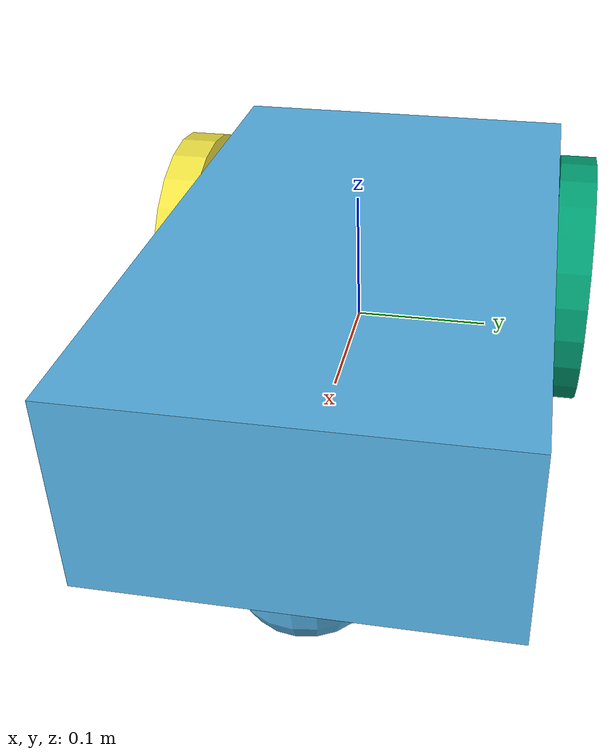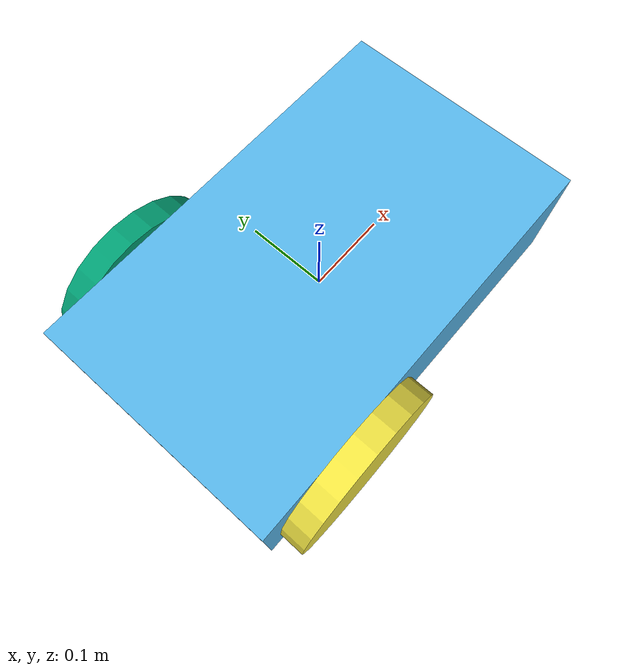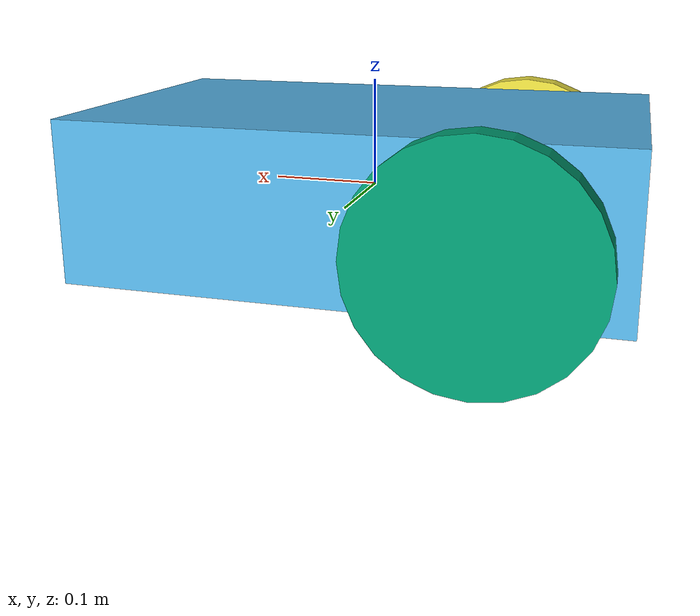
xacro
<?xml version="1.0"?>

<!-- choose a name space and start xacro -->
<robot xmlns:xacro="http://wwww.ros.org/wiki/xacro">

 <!-- Start by including all the required xacrro files which hold the macros -->
 <xacro:include filename="$(find simulation_environment)/models/diff_drive/diff_drive.gazebo" />
 <xacro:include filename="$(find simulation_environment)/models/diff_drive/materials.xacro" />
 <xacro:include filename="$(find simulation_environment)/models/diff_drive/macros.xacro" />
 <xacro:include filename="$(find simulation_environment)/models/diff_drive/parameter.xacro" />

 <!-- Create a dummy link as a base link -->
  <link name='base_link'>
    <pose>0 0 0 0 0 0</pose>
  </link>
  <joint type="fixed" name="base_link_to_chassis">
    <child link="chassis_link"/>
    <parent link="base_link"/>
  </joint>

 <!-- Define the chassis of  the differential drive robot, which is our base -->
 <link name='chassis_link'>
    <pose>0 0 0 0 0 0</pose>
    <!-- Define inertial system for the chassis -->
    <inertial>
      <mass value="${m_chassis}"/>
      <xacro:box_inertia m="${m_chassis}" x="${x_chassis}" y="${y_chassis}" z="${z_chassis}"/>
    </inertial>
    <!-- Define collision surrounding box -->
    <collision name='collision'>>
      <origin xyz="0 0 0" rpy="0 0 0"/>
      <geometry>
       <box size="${x_chassis} ${y_chassis} ${z_chassis}"/>
      </geometry>
    </collision>
    <!-- Define visualization structure -->
    <visual name='base_link_visual'>
	    <origin xyz="0 0 0" rpy="0 0 0"/>
	    <geometry>
         <box size="${x_chassis} ${y_chassis} ${z_chassis}"/>
      </geometry>
    </visual>

    <!-- Add the castor wheel! Here we simply assume complete slippage, thus we do not require that it rotates! -->
    <collision name='caster_collision'>
      <origin xyz="${-(r_wheel/2)+x_chassis/2} 0 ${-z_chassis/2}" rpy="0 0 0"/>
      <geometry>
       <sphere radius="${r_wheel/2}"/>
      </geometry>
      <surface>
       <friction>
        <ode>
         <mu>0</mu>
         <mu2>0</mu2>
         <slip1>1.0</slip1>
         <slip2>1.0</slip2>
        </ode>
       </friction>
      </surface>
    </collision>
    <visual name='caster_visual'>
	    <origin xyz="${-(r_wheel/2)+x_chassis/2} 0 ${-z_chassis/2}" rpy="0 0 0"/>
    	<geometry>
        <sphere radius="${r_wheel/2}"/>
      </geometry>
    </visual>
  </link>

  <!-- Add the wheels for the robot -->
  <link name="left_wheel">
    <collision name="collision">
      <origin xyz="0 0 0" rpy="0 1.5707 1.5707"/>
      <geometry>
       <cylinder radius="${r_wheel}" length="${h_wheel}"/>
      </geometry>
      <surface>
       <friction>
        <ode>
         <mu>1.0</mu>
         <mu2>1.0</mu2>
         <slip1>0.0</slip1>
         <slip2>0.0</slip2>
        </ode>
       </friction>
      </surface>
    </collision>
    <visual name='left_wheel_visual'>
	    <origin xyz="0 0 0" rpy="0 1.5707 1.5707"/>
    	<geometry>
        <cylinder radius="${r_wheel}" length="${h_wheel}"/>
      </geometry>
    </visual>
    <inertial>
      <origin xyz="0 0 0" rpy="0 1.5707 1.5707"/>
      <mass value="${m_wheel}"/>
      <cylinder_inertia m="${m_wheel}" r="${r_wheel}" h="${h_wheel}"/>
      <xacro:cylinder_inertia m="${m_wheel}" r="${r_wheel}" h="${h_wheel}"/>
    </inertial>
  </link>

  <link name="right_wheel">
    <collision name="collision">
      <origin xyz="0 0 0" rpy="0 1.5707 1.5707"/>
      <geometry>
       <cylinder radius="${r_wheel}" length="${h_wheel}"/>
      </geometry>
      <surface>
       <friction>
        <ode>
         <mu>1.0</mu>
         <mu2>1.0</mu2>
         <slip1>0.0</slip1>
         <slip2>0.0</slip2>
        </ode>
       </friction>
      </surface>
    </collision>
    <visual name="right_wheel_visual">
	    <origin xyz="0 0 0" rpy="0 1.5707 1.5707"/>
    	<geometry>
        <cylinder radius="${r_wheel}" length="${h_wheel}"/>
      </geometry>
    </visual>
    <inertial>
      <origin xyz="0 0 0" rpy="0 1.5707 1.5707"/>
      <mass value="${m_wheel}"/>
      <cylinder_inertia m="${m_wheel}" r="${r_wheel}" h="${h_wheel}"/>
      <xacro:cylinder_inertia m="${m_wheel}" r="${r_wheel}" h="${h_wheel}"/>
    </inertial>
  </link>

  <!-- Set joints for the wheels which can be controlled over ROS -->
  <joint type="continuous" name="left_wheel_hinge">
    <origin xyz="${-x_chassis/4} ${y_chassis/2+h_wheel/2} ${r_wheel/2-z_chassis/2}" rpy="0 0 0"/>
    <child link="left_wheel"/>
    <parent link="base_link"/>
    <axis xyz="0 1 0" rpy="0 0 0"/>
    <limit effort="100" velocity="100"/>
    <joint_properties damping="0.0" friction="0.0"/>
  </joint>
  <joint type="continuous" name="right_wheel_hinge">
    <origin xyz="${-x_chassis/4} ${-y_chassis/2-h_wheel/2} ${r_wheel/2-z_chassis/2}" rpy="0 0 0"/>
    <child link="right_wheel"/>
    <parent link="base_link"/>
    <axis xyz="0 1 0" rpy="0 0 0"/>
    <limit effort="100" velocity="100"/>
    <joint_properties damping="0.0" friction="0.0"/>
  </joint>

</robot>

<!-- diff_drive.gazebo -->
<robot xmlns:xacro="http://wwww.ros.org/wiki/xacro">
    <xacro:include filename="$(find simulation_environment)/models/diff_drive/parameter.xacro" />

    <!-- Differential Drive controller from Gazebo -->
    <gazebo>
        <plugin name="differential_drive_controller" filename="libgazebo_ros_diff_drive.so">
            <alwaysOn>true</alwaysOn>
            <updateRate>20</updateRate>
            <leftJoint>left_wheel_hinge</leftJoint>
            <rightJoint>right_wheel_hinge</rightJoint>
            <wheelSeparation>${L_wheel*2}</wheelSeparation>
            <wheelDiameter>${r_wheel*2}</wheelDiameter>
            <torque>20</torque>
            <commandTopic>cmd_vel</commandTopic>
            <odometryTopic>odom</odometryTopic>
            <odometryFrame>odom_link</odometryFrame>
            <robotBaseFrame>base_link</robotBaseFrame>
            <legacyMode>false</legacyMode>
        </plugin>
    </gazebo>

    <!-- Paint the robot -->
    <gazebo reference="base_link">
        <material>Gazebo/Orange</material>
    </gazebo>
</robot>

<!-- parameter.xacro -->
<robot xmlns:xacro="http://wwww.ros.org/wiki/xacro">

 <!-- Define parameter for the differential drive robot -->
 <!-- Parameter for the chassis, size [m] and mass [kg] -->
 <xacro:property name="x_chassis" value="0.5" />
 <xacro:property name="y_chassis" value="0.3" />
 <xacro:property name="z_chassis" value="0.15" />
 <xacro:property name="m_chassis" value="10.0" />

 <!-- Parameter for the wheels, radius [m], height [m], mass [kg], torque [Nm], wheelbase [m] -->
 <xacro:property name="r_wheel" value="0.1075" />
 <xacro:property name="h_wheel" value="0.03" />
 <xacro:property name="m_wheel" value="3.0" />
 <xacro:property name="torque_wheel" value="10" />
 <xacro:property name="L_wheel" value="0.1788" />

</robot>

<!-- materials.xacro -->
<robot xmlns:xacro="http://wwww.ros.org/wiki/xacro">

 <!-- Here we define the material color we may want to use -->
 <material name="orange">
  <color rgba="${255/255} ${108/255} ${10/255} 1.0" />
 </material>

</robot>

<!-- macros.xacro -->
<robot xmlns:xacro="http://wwww.ros.org/wiki/xacro">

 <xacro:macro name="box_inertia" params="m x y z">
	<inertia
	 ixx="${m*(y*y+z*z)/12}" ixy="0" ixz="0"
	 iyy="${m*(x*x+z*z)/12}" iyz="0"
	 izz="${m*(x*x+z*z)/12}"
	/>
 </xacro:macro>

 <xacro:macro name="cylinder_inertia" params="m r h">
	<inertia
	 ixx="${m*(3*r*r+h*h)/12}" ixy="0" ixz="0"
	 iyy="${m*(3*r*r+h*h)/12}" iyz="0"
	 izz="${m*r*r/2}"
	/>
 </xacro:macro>

</robot>
